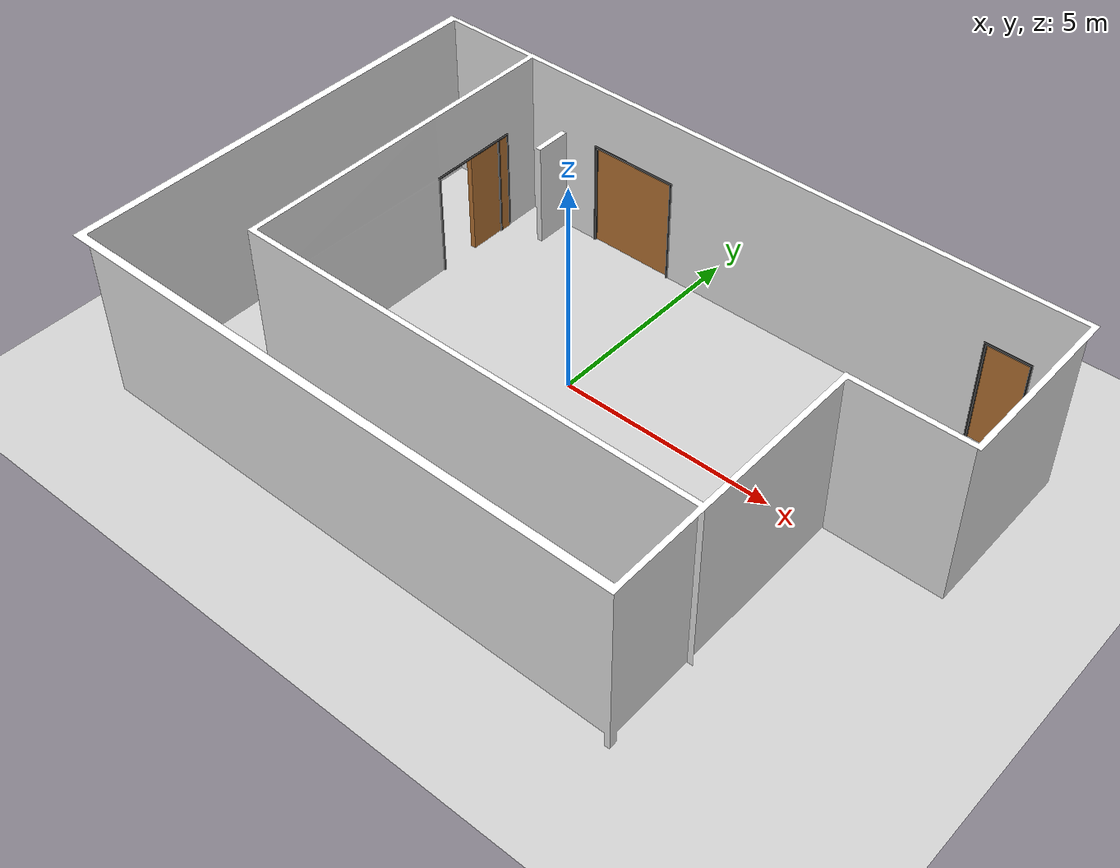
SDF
<?xml version="1.0" ?>
<sdf version="1.5">
  <world name="centralLab">

    <light type="point" name="indoor_light">
      <cast_shadows>false</cast_shadows>
      <pose>0 0 4 0 0 0</pose>
      <diffuse>0.5 0.5 0.5 1</diffuse>
      <specular>0.1 0.1 0.1 1</specular>
      <attenuation>
        <range>100</range>
        <constant>0.65</constant>
        <linear>0.00</linear>
        <quadratic>0.00</quadratic>
      </attenuation>
    </light>

    <!-- A global light source -->
    <include>
      <uri>model://sun</uri>
    </include>

    <!-- Models to include -->
    <include>
      <uri>model:///clf_walls</uri>
      <name>walls</name>
      <pose>-4.5 4 0 0 -0 0</pose>
    </include>

  </world>
</sdf>

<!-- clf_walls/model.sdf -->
<sdf version="1.6">
  <model name="clf_walls">
    <static>true</static>
    <link name="link">
      <!--   Collision   -->
      <collision name="walls_collision">
        <geometry>
          <mesh>
            <uri>model://clf_walls/meshes/clf_walls.dae</uri>
          </mesh>
        </geometry>
      </collision>
      <collision name="floor_collision">
        <geometry>
          <plane>
            <normal>0 0 1</normal>
            <size>100 100</size>
          </plane>
        </geometry>
        <surface>
          <friction>
            <ode>
              <mu>100</mu>
              <mu2>50</mu2>
            </ode>
          </friction>
        </surface>
      </collision>
      <collision name="doors_metal_collision">
        <geometry>
          <mesh>
            <uri>model://clf_walls/meshes/clf_walls_doors_metal.dae</uri>
          </mesh>
        </geometry>
      </collision>
      <collision name="doors_wood_collision">
        <geometry>
          <mesh>
            <uri>model://clf_walls/meshes/clf_walls_doors_wood.dae</uri>
          </mesh>
        </geometry>
      </collision>
      <!--   Visual   -->
      <visual name="walls_visual">
        <material>
          <ambient>1 1 1 1.0</ambient>
          <diffuse>1 1 1 1.0</diffuse>
          <specular>0 0 0 0</specular>
          <emissive>0.1 0.1 0.1 1</emissive>
        </material>
        <geometry>
          <mesh>
            <uri>model://clf_walls/meshes/clf_walls.dae</uri>
          </mesh>
        </geometry>
      </visual>
      <visual name="floor_visual">
        <material>
          <script>
            <uri>file://materials/scripts/floor.material</uri>
            <name>CLF/Floor</name>
          </script>
        </material>
        <geometry>
          <plane>
            <normal>0 0 1</normal>
            <size>100 100</size>
          </plane>
        </geometry>
      </visual>
      <visual name="doors_metal_visual">
        <material>
          <ambient>0.13 0.13 0.13 1.0</ambient>
          <diffuse>0.13 0.13 0.13 1.0</diffuse>
          <specular>0 0 0 0</specular>
          <emissive>0.1 0.1 0.1 1</emissive>
        </material>
        <geometry>
          <mesh>
            <uri>model://clf_walls/meshes/clf_walls_doors_metal.dae</uri>
          </mesh>
        </geometry>
      </visual>
      <visual name="doors_wood_visual">
        <material>
          <ambient>0.8 0.51 0.23 1.0</ambient>
          <diffuse>0.8 0.51 0.23 1.0</diffuse>
          <specular>0 0 0 0</specular>
          <emissive>0.1 0.1 0.1 1</emissive>
        </material>
        <geometry>
          <mesh>
            <uri>model://clf_walls/meshes/clf_walls_doors_wood.dae</uri>
          </mesh>
        </geometry>
      </visual>
    </link>
  </model>
</sdf>
